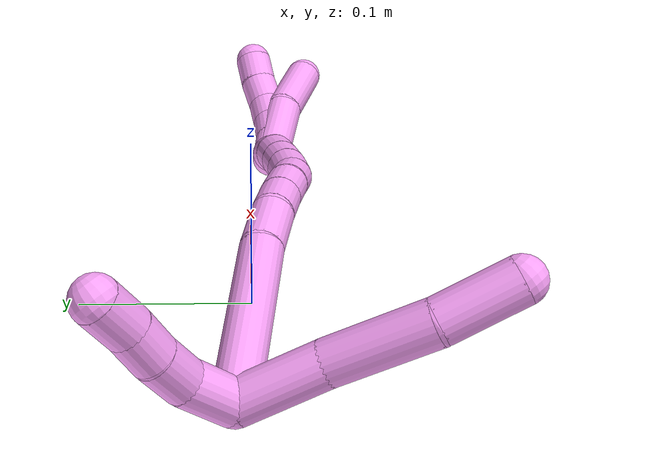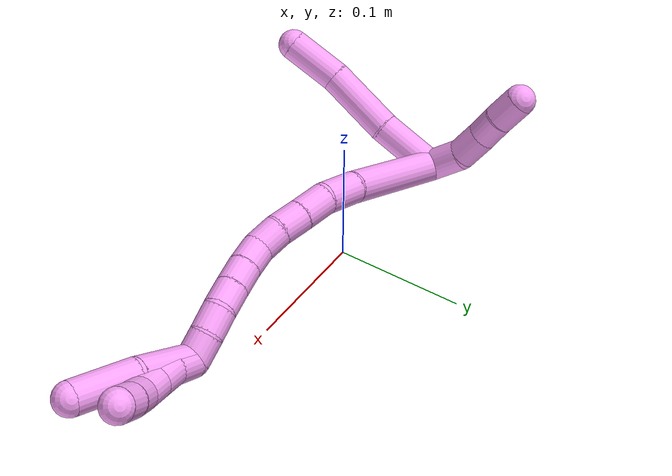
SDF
<sdf version="1.7">
 <world name="default">
  <model name="4">
   <static>0</static>
   <link name="4">
    <collision name="collision-cylinder-e_1_2_8">
     <pose>0.00024 -0.023753 -0.005178 1.78545 0.00986 0.012241</pose>
     <geometry><cylinder><radius>0.0125</radius><length>0.048624</length></cylinder></geometry>
     <surface>
      <friction><ode><mu>1.16</mu><mu2>1.16</mu2><slip1>0</slip1><slip2>0</slip2></ode></friction>
      <contact><ode><kp>1e+06</kp><kd>1</kd><max_vel>0</max_vel><min_depth>0.001</min_depth></ode></contact>
     </surface>
    </collision>
    <visual name="visual-cylinder-e_1_2_8">
     <pose>0.00024 -0.023753 -0.005178 1.78545 0.00986 0.012241</pose>
     <geometry><cylinder><radius>0.0125</radius><length>0.048624</length></cylinder></geometry>
     <material><ambient>1 0.65098 0.996078 1</ambient></material>
    </visual>
    <collision name="collision-cylinder-e_2_8_9">
     <pose>-0.003039 -0.075374 -0.017384 1.81782 -0.121808 -0.156214</pose>
     <geometry><cylinder><radius>0.0125</radius><length>0.057909</length></cylinder></geometry>
     <surface>
      <friction><ode><mu>1.16</mu><mu2>1.16</mu2><slip1>0</slip1><slip2>0</slip2></ode></friction>
      <contact><ode><kp>1e+06</kp><kd>1</kd><max_vel>0</max_vel><min_depth>0.001</min_depth></ode></contact>
     </surface>
    </collision>
    <visual name="visual-cylinder-e_2_8_9">
     <pose>-0.003039 -0.075374 -0.017384 1.81782 -0.121808 -0.156214</pose>
     <geometry><cylinder><radius>0.0125</radius><length>0.057909</length></cylinder></geometry>
     <material><ambient>1 0.65098 0.996078 1</ambient></material>
    </visual>
    <collision name="collision-cylinder-e_3_9_6">
     <pose>-0.005264 -0.124625 -0.028071 1.74028 0.05951 0.07055</pose>
     <geometry><cylinder><radius>0.0125</radius><length>0.043466</length></cylinder></geometry>
     <surface>
      <friction><ode><mu>1.16</mu><mu2>1.16</mu2><slip1>0</slip1><slip2>0</slip2></ode></friction>
      <contact><ode><kp>1e+06</kp><kd>1</kd><max_vel>0</max_vel><min_depth>0.001</min_depth></ode></contact>
     </surface>
    </collision>
    <visual name="visual-cylinder-e_3_9_6">
     <pose>-0.005264 -0.124625 -0.028071 1.74028 0.05951 0.07055</pose>
     <geometry><cylinder><radius>0.0125</radius><length>0.043466</length></cylinder></geometry>
     <material><ambient>1 0.65098 0.996078 1</ambient></material>
    </visual>
    <collision name="collision-cylinder-e_1_2_10">
     <pose>-0.008075 0.004359 0.012011 -0.348154 -0.563574 0.10173</pose>
     <geometry><cylinder><radius>0.0125</radius><length>0.03023</length></cylinder></geometry>
     <surface>
      <friction><ode><mu>1.16</mu><mu2>1.16</mu2><slip1>0</slip1><slip2>0</slip2></ode></friction>
      <contact><ode><kp>1e+06</kp><kd>1</kd><max_vel>0</max_vel><min_depth>0.001</min_depth></ode></contact>
     </surface>
    </collision>
    <visual name="visual-cylinder-e_1_2_10">
     <pose>-0.008075 0.004359 0.012011 -0.348154 -0.563574 0.10173</pose>
     <geometry><cylinder><radius>0.0125</radius><length>0.03023</length></cylinder></geometry>
     <material><ambient>1 0.65098 0.996078 1</ambient></material>
    </visual>
    <collision name="collision-cylinder-e_2_10_11">
     <pose>-0.024342 0.00843 0.033259 0.031254 -0.725311 -0.01186</pose>
     <geometry><cylinder><radius>0.0125</radius><length>0.024701</length></cylinder></geometry>
     <surface>
      <friction><ode><mu>1.16</mu><mu2>1.16</mu2><slip1>0</slip1><slip2>0</slip2></ode></friction>
      <contact><ode><kp>1e+06</kp><kd>1</kd><max_vel>0</max_vel><min_depth>0.001</min_depth></ode></contact>
     </surface>
    </collision>
    <visual name="visual-cylinder-e_2_10_11">
     <pose>-0.024342 0.00843 0.033259 0.031254 -0.725311 -0.01186</pose>
     <geometry><cylinder><radius>0.0125</radius><length>0.024701</length></cylinder></geometry>
     <material><ambient>1 0.65098 0.996078 1</ambient></material>
    </visual>
    <collision name="collision-cylinder-e_3_11_12">
     <pose>-0.03849 0.007172 0.051086 0.112294 -0.603218 -0.034968</pose>
     <geometry><cylinder><radius>0.0125</radius><length>0.020993</length></cylinder></geometry>
     <surface>
      <friction><ode><mu>1.16</mu><mu2>1.16</mu2><slip1>0</slip1><slip2>0</slip2></ode></friction>
      <contact><ode><kp>1e+06</kp><kd>1</kd><max_vel>0</max_vel><min_depth>0.001</min_depth></ode></contact>
     </surface>
    </collision>
    <visual name="visual-cylinder-e_3_11_12">
     <pose>-0.03849 0.007172 0.051086 0.112294 -0.603218 -0.034968</pose>
     <geometry><cylinder><radius>0.0125</radius><length>0.020993</length></cylinder></geometry>
     <material><ambient>1 0.65098 0.996078 1</ambient></material>
    </visual>
    <collision name="collision-cylinder-e_4_12_5">
     <pose>-0.052133 0.005867 0.068932 0.036351 -0.692837 -0.013123</pose>
     <geometry><cylinder><radius>0.0125</radius><length>0.024076</length></cylinder></geometry>
     <surface>
      <friction><ode><mu>1.16</mu><mu2>1.16</mu2><slip1>0</slip1><slip2>0</slip2></ode></friction>
      <contact><ode><kp>1e+06</kp><kd>1</kd><max_vel>0</max_vel><min_depth>0.001</min_depth></ode></contact>
     </surface>
    </collision>
    <visual name="visual-cylinder-e_4_12_5">
     <pose>-0.052133 0.005867 0.068932 0.036351 -0.692837 -0.013123</pose>
     <geometry><cylinder><radius>0.0125</radius><length>0.024076</length></cylinder></geometry>
     <material><ambient>1 0.65098 0.996078 1</ambient></material>
    </visual>
    <collision name="collision-cylinder-e_1_2_13">
     <pose>0.038071 -0.021357 0.025794 0.691575 0.849361 0.322982</pose>
     <geometry><cylinder><radius>0.0125</radius><length>0.101407</length></cylinder></geometry>
     <surface>
      <friction><ode><mu>1.16</mu><mu2>1.16</mu2><slip1>0</slip1><slip2>0</slip2></ode></friction>
      <contact><ode><kp>1e+06</kp><kd>1</kd><max_vel>0</max_vel><min_depth>0.001</min_depth></ode></contact>
     </surface>
    </collision>
    <visual name="visual-cylinder-e_1_2_13">
     <pose>0.038071 -0.021357 0.025794 0.691575 0.849361 0.322982</pose>
     <geometry><cylinder><radius>0.0125</radius><length>0.101407</length></cylinder></geometry>
     <material><ambient>1 0.65098 0.996078 1</ambient></material>
    </visual>
    <collision name="collision-cylinder-e_2_13_14">
     <pose>0.089033 -0.048807 0.057434 0.806058 0.990873 0.452908</pose>
     <geometry><cylinder><radius>0.0125</radius><length>0.030822</length></cylinder></geometry>
     <surface>
      <friction><ode><mu>1.16</mu><mu2>1.16</mu2><slip1>0</slip1><slip2>0</slip2></ode></friction>
      <contact><ode><kp>1e+06</kp><kd>1</kd><max_vel>0</max_vel><min_depth>0.001</min_depth></ode></contact>
     </surface>
    </collision>
    <visual name="visual-cylinder-e_2_13_14">
     <pose>0.089033 -0.048807 0.057434 0.806058 0.990873 0.452908</pose>
     <geometry><cylinder><radius>0.0125</radius><length>0.030822</length></cylinder></geometry>
     <material><ambient>1 0.65098 0.996078 1</ambient></material>
    </visual>
    <collision name="collision-cylinder-e_3_14_15">
     <pose>0.11386 -0.057723 0.066016 0.801122 1.25263 0.594572</pose>
     <geometry><cylinder><radius>0.0125</radius><length>0.025131</length></cylinder></geometry>
     <surface>
      <friction><ode><mu>1.16</mu><mu2>1.16</mu2><slip1>0</slip1><slip2>0</slip2></ode></friction>
      <contact><ode><kp>1e+06</kp><kd>1</kd><max_vel>0</max_vel><min_depth>0.001</min_depth></ode></contact>
     </surface>
    </collision>
    <visual name="visual-cylinder-e_3_14_15">
     <pose>0.11386 -0.057723 0.066016 0.801122 1.25263 0.594572</pose>
     <geometry><cylinder><radius>0.0125</radius><length>0.025131</length></cylinder></geometry>
     <material><ambient>1 0.65098 0.996078 1</ambient></material>
    </visual>
    <collision name="collision-cylinder-e_4_15_16">
     <pose>0.136251 -0.063208 0.070709 0.936622 1.26472 0.709898</pose>
     <geometry><cylinder><radius>0.0125</radius><length>0.021931</length></cylinder></geometry>
     <surface>
      <friction><ode><mu>1.16</mu><mu2>1.16</mu2><slip1>0</slip1><slip2>0</slip2></ode></friction>
      <contact><ode><kp>1e+06</kp><kd>1</kd><max_vel>0</max_vel><min_depth>0.001</min_depth></ode></contact>
     </surface>
    </collision>
    <visual name="visual-cylinder-e_4_15_16">
     <pose>0.136251 -0.063208 0.070709 0.936622 1.26472 0.709898</pose>
     <geometry><cylinder><radius>0.0125</radius><length>0.021931</length></cylinder></geometry>
     <material><ambient>1 0.65098 0.996078 1</ambient></material>
    </visual>
    <collision name="collision-cylinder-e_5_16_17">
     <pose>0.156869 -0.06702 0.073688 0.845116 1.42054 0.737964</pose>
     <geometry><cylinder><radius>0.0125</radius><length>0.020556</length></cylinder></geometry>
     <surface>
      <friction><ode><mu>1.16</mu><mu2>1.16</mu2><slip1>0</slip1><slip2>0</slip2></ode></friction>
      <contact><ode><kp>1e+06</kp><kd>1</kd><max_vel>0</max_vel><min_depth>0.001</min_depth></ode></contact>
     </surface>
    </collision>
    <visual name="visual-cylinder-e_5_16_17">
     <pose>0.156869 -0.06702 0.073688 0.845116 1.42054 0.737964</pose>
     <geometry><cylinder><radius>0.0125</radius><length>0.020556</length></cylinder></geometry>
     <material><ambient>1 0.65098 0.996078 1</ambient></material>
    </visual>
    <collision name="collision-cylinder-e_6_17_18">
     <pose>0.176369 -0.067653 0.078306 -0.143145 1.19967 -0.097985</pose>
     <geometry><cylinder><radius>0.0125</radius><length>0.02004</length></cylinder></geometry>
     <surface>
      <friction><ode><mu>1.16</mu><mu2>1.16</mu2><slip1>0</slip1><slip2>0</slip2></ode></friction>
      <contact><ode><kp>1e+06</kp><kd>1</kd><max_vel>0</max_vel><min_depth>0.001</min_depth></ode></contact>
     </surface>
    </collision>
    <visual name="visual-cylinder-e_6_17_18">
     <pose>0.176369 -0.067653 0.078306 -0.143145 1.19967 -0.097985</pose>
     <geometry><cylinder><radius>0.0125</radius><length>0.02004</length></cylinder></geometry>
     <material><ambient>1 0.65098 0.996078 1</ambient></material>
    </visual>
    <collision name="collision-cylinder-e_7_18_19">
     <pose>0.194987 -0.065972 0.08546 -0.31584 1.18748 -0.214156</pose>
     <geometry><cylinder><radius>0.0125</radius><length>0.020014</length></cylinder></geometry>
     <surface>
      <friction><ode><mu>1.16</mu><mu2>1.16</mu2><slip1>0</slip1><slip2>0</slip2></ode></friction>
      <contact><ode><kp>1e+06</kp><kd>1</kd><max_vel>0</max_vel><min_depth>0.001</min_depth></ode></contact>
     </surface>
    </collision>
    <visual name="visual-cylinder-e_7_18_19">
     <pose>0.194987 -0.065972 0.08546 -0.31584 1.18748 -0.214156</pose>
     <geometry><cylinder><radius>0.0125</radius><length>0.020014</length></cylinder></geometry>
     <material><ambient>1 0.65098 0.996078 1</ambient></material>
    </visual>
    <collision name="collision-cylinder-e_8_19_20">
     <pose>0.213615 -0.063384 0.092411 -0.397667 1.19562 -0.272707</pose>
     <geometry><cylinder><radius>0.0125</radius><length>0.020091</length></cylinder></geometry>
     <surface>
      <friction><ode><mu>1.16</mu><mu2>1.16</mu2><slip1>0</slip1><slip2>0</slip2></ode></friction>
      <contact><ode><kp>1e+06</kp><kd>1</kd><max_vel>0</max_vel><min_depth>0.001</min_depth></ode></contact>
     </surface>
    </collision>
    <visual name="visual-cylinder-e_8_19_20">
     <pose>0.213615 -0.063384 0.092411 -0.397667 1.19562 -0.272707</pose>
     <geometry><cylinder><radius>0.0125</radius><length>0.020091</length></cylinder></geometry>
     <material><ambient>1 0.65098 0.996078 1</ambient></material>
    </visual>
    <collision name="collision-cylinder-e_9_20_21">
     <pose>0.232636 -0.059669 0.096894 -1.12678 1.31447 -0.907129</pose>
     <geometry><cylinder><radius>0.0125</radius><length>0.020002</length></cylinder></geometry>
     <surface>
      <friction><ode><mu>1.16</mu><mu2>1.16</mu2><slip1>0</slip1><slip2>0</slip2></ode></friction>
      <contact><ode><kp>1e+06</kp><kd>1</kd><max_vel>0</max_vel><min_depth>0.001</min_depth></ode></contact>
     </surface>
    </collision>
    <visual name="visual-cylinder-e_9_20_21">
     <pose>0.232636 -0.059669 0.096894 -1.12678 1.31447 -0.907129</pose>
     <geometry><cylinder><radius>0.0125</radius><length>0.020002</length></cylinder></geometry>
     <material><ambient>1 0.65098 0.996078 1</ambient></material>
    </visual>
    <collision name="collision-cylinder-e_10_21_1">
     <pose>0.251988 -0.054954 0.097255 -1.8625 1.31487 -1.60795</pose>
     <geometry><cylinder><radius>0.0125</radius><length>0.020006</length></cylinder></geometry>
     <surface>
      <friction><ode><mu>1.16</mu><mu2>1.16</mu2><slip1>0</slip1><slip2>0</slip2></ode></friction>
      <contact><ode><kp>1e+06</kp><kd>1</kd><max_vel>0</max_vel><min_depth>0.001</min_depth></ode></contact>
     </surface>
    </collision>
    <visual name="visual-cylinder-e_10_21_1">
     <pose>0.251988 -0.054954 0.097255 -1.8625 1.31487 -1.60795</pose>
     <geometry><cylinder><radius>0.0125</radius><length>0.020006</length></cylinder></geometry>
     <material><ambient>1 0.65098 0.996078 1</ambient></material>
    </visual>
    <collision name="collision-cylinder-e_1_1_22">
     <pose>0.279614 -0.065092 0.108908 0.792692 0.794123 0.347438</pose>
     <geometry><cylinder><radius>0.0125</radius><length>0.05033</length></cylinder></geometry>
     <surface>
      <friction><ode><mu>1.16</mu><mu2>1.16</mu2><slip1>0</slip1><slip2>0</slip2></ode></friction>
      <contact><ode><kp>1e+06</kp><kd>1</kd><max_vel>0</max_vel><min_depth>0.001</min_depth></ode></contact>
     </surface>
    </collision>
    <visual name="visual-cylinder-e_1_1_22">
     <pose>0.279614 -0.065092 0.108908 0.792692 0.794123 0.347438</pose>
     <geometry><cylinder><radius>0.0125</radius><length>0.05033</length></cylinder></geometry>
     <material><ambient>1 0.65098 0.996078 1</ambient></material>
    </visual>
    <collision name="collision-cylinder-e_2_22_4">
     <pose>0.318365 -0.08929 0.128265 1.03068 0.992888 0.595388</pose>
     <geometry><cylinder><radius>0.0125</radius><length>0.04967</length></cylinder></geometry>
     <surface>
      <friction><ode><mu>1.16</mu><mu2>1.16</mu2><slip1>0</slip1><slip2>0</slip2></ode></friction>
      <contact><ode><kp>1e+06</kp><kd>1</kd><max_vel>0</max_vel><min_depth>0.001</min_depth></ode></contact>
     </surface>
    </collision>
    <visual name="visual-cylinder-e_2_22_4">
     <pose>0.318365 -0.08929 0.128265 1.03068 0.992888 0.595388</pose>
     <geometry><cylinder><radius>0.0125</radius><length>0.04967</length></cylinder></geometry>
     <material><ambient>1 0.65098 0.996078 1</ambient></material>
    </visual>
    <collision name="collision-cylinder-e_1_1_23">
     <pose>0.269138 -0.056705 0.101695 0.679729 0.84404 0.314889</pose>
     <geometry><cylinder><radius>0.0125</radius><length>0.02</length></cylinder></geometry>
     <surface>
      <friction><ode><mu>1.16</mu><mu2>1.16</mu2><slip1>0</slip1><slip2>0</slip2></ode></friction>
      <contact><ode><kp>1e+06</kp><kd>1</kd><max_vel>0</max_vel><min_depth>0.001</min_depth></ode></contact>
     </surface>
    </collision>
    <visual name="visual-cylinder-e_1_1_23">
     <pose>0.269138 -0.056705 0.101695 0.679729 0.84404 0.314889</pose>
     <geometry><cylinder><radius>0.0125</radius><length>0.02</length></cylinder></geometry>
     <material><ambient>1 0.65098 0.996078 1</ambient></material>
    </visual>
    <collision name="collision-cylinder-e_2_23_24">
     <pose>0.284506 -0.062758 0.112707 0.310676 0.9099 0.15291</pose>
     <geometry><cylinder><radius>0.0125</radius><length>0.02</length></cylinder></geometry>
     <surface>
      <friction><ode><mu>1.16</mu><mu2>1.16</mu2><slip1>0</slip1><slip2>0</slip2></ode></friction>
      <contact><ode><kp>1e+06</kp><kd>1</kd><max_vel>0</max_vel><min_depth>0.001</min_depth></ode></contact>
     </surface>
    </collision>
    <visual name="visual-cylinder-e_2_23_24">
     <pose>0.284506 -0.062758 0.112707 0.310676 0.9099 0.15291</pose>
     <geometry><cylinder><radius>0.0125</radius><length>0.02</length></cylinder></geometry>
     <material><ambient>1 0.65098 0.996078 1</ambient></material>
    </visual>
    <collision name="collision-cylinder-e_3_24_25">
     <pose>0.299453 -0.066469 0.125399 0.261707 0.782765 0.108513</pose>
     <geometry><cylinder><radius>0.0125</radius><length>0.02</length></cylinder></geometry>
     <surface>
      <friction><ode><mu>1.16</mu><mu2>1.16</mu2><slip1>0</slip1><slip2>0</slip2></ode></friction>
      <contact><ode><kp>1e+06</kp><kd>1</kd><max_vel>0</max_vel><min_depth>0.001</min_depth></ode></contact>
     </surface>
    </collision>
    <visual name="visual-cylinder-e_3_24_25">
     <pose>0.299453 -0.066469 0.125399 0.261707 0.782765 0.108513</pose>
     <geometry><cylinder><radius>0.0125</radius><length>0.02</length></cylinder></geometry>
     <material><ambient>1 0.65098 0.996078 1</ambient></material>
    </visual>
    <collision name="collision-cylinder-e_4_25_26">
     <pose>0.311009 -0.070457 0.140912 0.243546 0.467266 0.058231</pose>
     <geometry><cylinder><radius>0.0125</radius><length>0.02</length></cylinder></geometry>
     <surface>
      <friction><ode><mu>1.16</mu><mu2>1.16</mu2><slip1>0</slip1><slip2>0</slip2></ode></friction>
      <contact><ode><kp>1e+06</kp><kd>1</kd><max_vel>0</max_vel><min_depth>0.001</min_depth></ode></contact>
     </surface>
    </collision>
    <visual name="visual-cylinder-e_4_25_26">
     <pose>0.311009 -0.070457 0.140912 0.243546 0.467266 0.058231</pose>
     <geometry><cylinder><radius>0.0125</radius><length>0.02</length></cylinder></geometry>
     <material><ambient>1 0.65098 0.996078 1</ambient></material>
    </visual>
    <collision name="collision-cylinder-e_5_26_3">
     <pose>0.320187 -0.075657 0.157876 0.351894 0.486262 0.088138</pose>
     <geometry><cylinder><radius>0.0125</radius><length>0.02</length></cylinder></geometry>
     <surface>
      <friction><ode><mu>1.16</mu><mu2>1.16</mu2><slip1>0</slip1><slip2>0</slip2></ode></friction>
      <contact><ode><kp>1e+06</kp><kd>1</kd><max_vel>0</max_vel><min_depth>0.001</min_depth></ode></contact>
     </surface>
    </collision>
    <visual name="visual-cylinder-e_5_26_3">
     <pose>0.320187 -0.075657 0.157876 0.351894 0.486262 0.088138</pose>
     <geometry><cylinder><radius>0.0125</radius><length>0.02</length></cylinder></geometry>
     <material><ambient>1 0.65098 0.996078 1</ambient></material>
    </visual>
    <collision name="collision-sphere-3">
     <pose>0.32486 -0.078704 0.166175 0 -0 0</pose>
     <geometry><sphere><radius>0.0125</radius></sphere></geometry>
     <surface>
      <friction><ode><mu>1.16</mu><mu2>1.16</mu2><slip1>0</slip1><slip2>0</slip2></ode></friction>
      <contact><ode><kp>1e+06</kp><kd>1</kd><max_vel>0</max_vel><min_depth>0.001</min_depth></ode></contact>
     </surface>
    </collision>
    <visual name="visual-sphere-3">
     <pose>0.32486 -0.078704 0.166175 0 -0 0</pose>
     <geometry><sphere><radius>0.0125</radius></sphere></geometry>
     <material><ambient>1 0.65098 0.996078 1</ambient></material>
    </visual>
    <collision name="collision-sphere-26">
     <pose>0.315514 -0.072609 0.149577 0 -0 0</pose>
     <geometry><sphere><radius>0.0125</radius></sphere></geometry>
     <surface>
      <friction><ode><mu>1.16</mu><mu2>1.16</mu2><slip1>0</slip1><slip2>0</slip2></ode></friction>
      <contact><ode><kp>1e+06</kp><kd>1</kd><max_vel>0</max_vel><min_depth>0.001</min_depth></ode></contact>
     </surface>
    </collision>
    <visual name="visual-sphere-26">
     <pose>0.315514 -0.072609 0.149577 0 -0 0</pose>
     <geometry><sphere><radius>0.0125</radius></sphere></geometry>
     <material><ambient>1 0.65098 0.996078 1</ambient></material>
    </visual>
    <collision name="collision-sphere-25">
     <pose>0.306505 -0.068304 0.132248 0 -0 0</pose>
     <geometry><sphere><radius>0.0125</radius></sphere></geometry>
     <surface>
      <friction><ode><mu>1.16</mu><mu2>1.16</mu2><slip1>0</slip1><slip2>0</slip2></ode></friction>
      <contact><ode><kp>1e+06</kp><kd>1</kd><max_vel>0</max_vel><min_depth>0.001</min_depth></ode></contact>
     </surface>
    </collision>
    <visual name="visual-sphere-25">
     <pose>0.306505 -0.068304 0.132248 0 -0 0</pose>
     <geometry><sphere><radius>0.0125</radius></sphere></geometry>
     <material><ambient>1 0.65098 0.996078 1</ambient></material>
    </visual>
    <collision name="collision-sphere-24">
     <pose>0.2924 -0.064635 0.118551 0 -0 0</pose>
     <geometry><sphere><radius>0.0125</radius></sphere></geometry>
     <surface>
      <friction><ode><mu>1.16</mu><mu2>1.16</mu2><slip1>0</slip1><slip2>0</slip2></ode></friction>
      <contact><ode><kp>1e+06</kp><kd>1</kd><max_vel>0</max_vel><min_depth>0.001</min_depth></ode></contact>
     </surface>
    </collision>
    <visual name="visual-sphere-24">
     <pose>0.2924 -0.064635 0.118551 0 -0 0</pose>
     <geometry><sphere><radius>0.0125</radius></sphere></geometry>
     <material><ambient>1 0.65098 0.996078 1</ambient></material>
    </visual>
    <collision name="collision-sphere-23">
     <pose>0.276611 -0.060882 0.106862 0 -0 0</pose>
     <geometry><sphere><radius>0.0125</radius></sphere></geometry>
     <surface>
      <friction><ode><mu>1.16</mu><mu2>1.16</mu2><slip1>0</slip1><slip2>0</slip2></ode></friction>
      <contact><ode><kp>1e+06</kp><kd>1</kd><max_vel>0</max_vel><min_depth>0.001</min_depth></ode></contact>
     </surface>
    </collision>
    <visual name="visual-sphere-23">
     <pose>0.276611 -0.060882 0.106862 0 -0 0</pose>
     <geometry><sphere><radius>0.0125</radius></sphere></geometry>
     <material><ambient>1 0.65098 0.996078 1</ambient></material>
    </visual>
    <collision name="collision-sphere-4">
     <pose>0.339166 -0.100926 0.135242 0 -0 0</pose>
     <geometry><sphere><radius>0.0125</radius></sphere></geometry>
     <surface>
      <friction><ode><mu>1.16</mu><mu2>1.16</mu2><slip1>0</slip1><slip2>0</slip2></ode></friction>
      <contact><ode><kp>1e+06</kp><kd>1</kd><max_vel>0</max_vel><min_depth>0.001</min_depth></ode></contact>
     </surface>
    </collision>
    <visual name="visual-sphere-4">
     <pose>0.339166 -0.100926 0.135242 0 -0 0</pose>
     <geometry><sphere><radius>0.0125</radius></sphere></geometry>
     <material><ambient>1 0.65098 0.996078 1</ambient></material>
    </visual>
    <collision name="collision-sphere-22">
     <pose>0.297563 -0.077655 0.121289 0 -0 0</pose>
     <geometry><sphere><radius>0.0125</radius></sphere></geometry>
     <surface>
      <friction><ode><mu>1.16</mu><mu2>1.16</mu2><slip1>0</slip1><slip2>0</slip2></ode></friction>
      <contact><ode><kp>1e+06</kp><kd>1</kd><max_vel>0</max_vel><min_depth>0.001</min_depth></ode></contact>
     </surface>
    </collision>
    <visual name="visual-sphere-22">
     <pose>0.297563 -0.077655 0.121289 0 -0 0</pose>
     <geometry><sphere><radius>0.0125</radius></sphere></geometry>
     <material><ambient>1 0.65098 0.996078 1</ambient></material>
    </visual>
    <collision name="collision-sphere-1">
     <pose>0.261665 -0.052529 0.096527 0 -0 0</pose>
     <geometry><sphere><radius>0.0125</radius></sphere></geometry>
     <surface>
      <friction><ode><mu>1.16</mu><mu2>1.16</mu2><slip1>0</slip1><slip2>0</slip2></ode></friction>
      <contact><ode><kp>1e+06</kp><kd>1</kd><max_vel>0</max_vel><min_depth>0.001</min_depth></ode></contact>
     </surface>
    </collision>
    <visual name="visual-sphere-1">
     <pose>0.261665 -0.052529 0.096527 0 -0 0</pose>
     <geometry><sphere><radius>0.0125</radius></sphere></geometry>
     <material><ambient>1 0.65098 0.996078 1</ambient></material>
    </visual>
    <collision name="collision-sphere-21">
     <pose>0.24231 -0.057379 0.097983 0 -0 0</pose>
     <geometry><sphere><radius>0.0125</radius></sphere></geometry>
     <surface>
      <friction><ode><mu>1.16</mu><mu2>1.16</mu2><slip1>0</slip1><slip2>0</slip2></ode></friction>
      <contact><ode><kp>1e+06</kp><kd>1</kd><max_vel>0</max_vel><min_depth>0.001</min_depth></ode></contact>
     </surface>
    </collision>
    <visual name="visual-sphere-21">
     <pose>0.24231 -0.057379 0.097983 0 -0 0</pose>
     <geometry><sphere><radius>0.0125</radius></sphere></geometry>
     <material><ambient>1 0.65098 0.996078 1</ambient></material>
    </visual>
    <collision name="collision-sphere-11">
     <pose>-0.032535 0.008141 0.042497 0 -0 0</pose>
     <geometry><sphere><radius>0.0125</radius></sphere></geometry>
     <surface>
      <friction><ode><mu>1.16</mu><mu2>1.16</mu2><slip1>0</slip1><slip2>0</slip2></ode></friction>
      <contact><ode><kp>1e+06</kp><kd>1</kd><max_vel>0</max_vel><min_depth>0.001</min_depth></ode></contact>
     </surface>
    </collision>
    <visual name="visual-sphere-11">
     <pose>-0.032535 0.008141 0.042497 0 -0 0</pose>
     <geometry><sphere><radius>0.0125</radius></sphere></geometry>
     <material><ambient>1 0.65098 0.996078 1</ambient></material>
    </visual>
    <collision name="collision-sphere-10">
     <pose>-0.016149 0.008718 0.024022 0 -0 0</pose>
     <geometry><sphere><radius>0.0125</radius></sphere></geometry>
     <surface>
      <friction><ode><mu>1.16</mu><mu2>1.16</mu2><slip1>0</slip1><slip2>0</slip2></ode></friction>
      <contact><ode><kp>1e+06</kp><kd>1</kd><max_vel>0</max_vel><min_depth>0.001</min_depth></ode></contact>
     </surface>
    </collision>
    <visual name="visual-sphere-10">
     <pose>-0.016149 0.008718 0.024022 0 -0 0</pose>
     <geometry><sphere><radius>0.0125</radius></sphere></geometry>
     <material><ambient>1 0.65098 0.996078 1</ambient></material>
    </visual>
    <collision name="collision-sphere-6">
     <pose>-0.003972 -0.146009 -0.03173 0 -0 0</pose>
     <geometry><sphere><radius>0.0125</radius></sphere></geometry>
     <surface>
      <friction><ode><mu>1.16</mu><mu2>1.16</mu2><slip1>0</slip1><slip2>0</slip2></ode></friction>
      <contact><ode><kp>1e+06</kp><kd>1</kd><max_vel>0</max_vel><min_depth>0.001</min_depth></ode></contact>
     </surface>
    </collision>
    <visual name="visual-sphere-6">
     <pose>-0.003972 -0.146009 -0.03173 0 -0 0</pose>
     <geometry><sphere><radius>0.0125</radius></sphere></geometry>
     <material><ambient>1 0.65098 0.996078 1</ambient></material>
    </visual>
    <collision name="collision-sphere-9">
     <pose>-0.006557 -0.103242 -0.024412 0 -0 0</pose>
     <geometry><sphere><radius>0.0125</radius></sphere></geometry>
     <surface>
      <friction><ode><mu>1.16</mu><mu2>1.16</mu2><slip1>0</slip1><slip2>0</slip2></ode></friction>
      <contact><ode><kp>1e+06</kp><kd>1</kd><max_vel>0</max_vel><min_depth>0.001</min_depth></ode></contact>
     </surface>
    </collision>
    <visual name="visual-sphere-9">
     <pose>-0.006557 -0.103242 -0.024412 0 -0 0</pose>
     <geometry><sphere><radius>0.0125</radius></sphere></geometry>
     <material><ambient>1 0.65098 0.996078 1</ambient></material>
    </visual>
    <collision name="collision-sphere-2">
     <geometry><sphere><radius>0.0125</radius></sphere></geometry>
     <surface>
      <friction><ode><mu>1.16</mu><mu2>1.16</mu2><slip1>0</slip1><slip2>0</slip2></ode></friction>
      <contact><ode><kp>1e+06</kp><kd>1</kd><max_vel>0</max_vel><min_depth>0.001</min_depth></ode></contact>
     </surface>
    </collision>
    <visual name="visual-sphere-2">
     <geometry><sphere><radius>0.0125</radius></sphere></geometry>
     <material><ambient>1 0.65098 0.996078 1</ambient></material>
    </visual>
    <collision name="collision-sphere-19">
     <pose>0.204268 -0.06481 0.089017 0 -0 0</pose>
     <geometry><sphere><radius>0.0125</radius></sphere></geometry>
     <surface>
      <friction><ode><mu>1.16</mu><mu2>1.16</mu2><slip1>0</slip1><slip2>0</slip2></ode></friction>
      <contact><ode><kp>1e+06</kp><kd>1</kd><max_vel>0</max_vel><min_depth>0.001</min_depth></ode></contact>
     </surface>
    </collision>
    <visual name="visual-sphere-19">
     <pose>0.204268 -0.06481 0.089017 0 -0 0</pose>
     <geometry><sphere><radius>0.0125</radius></sphere></geometry>
     <material><ambient>1 0.65098 0.996078 1</ambient></material>
    </visual>
    <collision name="collision-sphere-8">
     <pose>0.000479 -0.047506 -0.010357 0 -0 0</pose>
     <geometry><sphere><radius>0.0125</radius></sphere></geometry>
     <surface>
      <friction><ode><mu>1.16</mu><mu2>1.16</mu2><slip1>0</slip1><slip2>0</slip2></ode></friction>
      <contact><ode><kp>1e+06</kp><kd>1</kd><max_vel>0</max_vel><min_depth>0.001</min_depth></ode></contact>
     </surface>
    </collision>
    <visual name="visual-sphere-8">
     <pose>0.000479 -0.047506 -0.010357 0 -0 0</pose>
     <geometry><sphere><radius>0.0125</radius></sphere></geometry>
     <material><ambient>1 0.65098 0.996078 1</ambient></material>
    </visual>
    <collision name="collision-sphere-12">
     <pose>-0.044444 0.006204 0.059676 0 -0 0</pose>
     <geometry><sphere><radius>0.0125</radius></sphere></geometry>
     <surface>
      <friction><ode><mu>1.16</mu><mu2>1.16</mu2><slip1>0</slip1><slip2>0</slip2></ode></friction>
      <contact><ode><kp>1e+06</kp><kd>1</kd><max_vel>0</max_vel><min_depth>0.001</min_depth></ode></contact>
     </surface>
    </collision>
    <visual name="visual-sphere-12">
     <pose>-0.044444 0.006204 0.059676 0 -0 0</pose>
     <geometry><sphere><radius>0.0125</radius></sphere></geometry>
     <material><ambient>1 0.65098 0.996078 1</ambient></material>
    </visual>
    <collision name="collision-sphere-5">
     <pose>-0.059822 0.00553 0.078188 0 -0 0</pose>
     <geometry><sphere><radius>0.0125</radius></sphere></geometry>
     <surface>
      <friction><ode><mu>1.16</mu><mu2>1.16</mu2><slip1>0</slip1><slip2>0</slip2></ode></friction>
      <contact><ode><kp>1e+06</kp><kd>1</kd><max_vel>0</max_vel><min_depth>0.001</min_depth></ode></contact>
     </surface>
    </collision>
    <visual name="visual-sphere-5">
     <pose>-0.059822 0.00553 0.078188 0 -0 0</pose>
     <geometry><sphere><radius>0.0125</radius></sphere></geometry>
     <material><ambient>1 0.65098 0.996078 1</ambient></material>
    </visual>
    <collision name="collision-sphere-13">
     <pose>0.076142 -0.042714 0.051587 0 -0 0</pose>
     <geometry><sphere><radius>0.0125</radius></sphere></geometry>
     <surface>
      <friction><ode><mu>1.16</mu><mu2>1.16</mu2><slip1>0</slip1><slip2>0</slip2></ode></friction>
      <contact><ode><kp>1e+06</kp><kd>1</kd><max_vel>0</max_vel><min_depth>0.001</min_depth></ode></contact>
     </surface>
    </collision>
    <visual name="visual-sphere-13">
     <pose>0.076142 -0.042714 0.051587 0 -0 0</pose>
     <geometry><sphere><radius>0.0125</radius></sphere></geometry>
     <material><ambient>1 0.65098 0.996078 1</ambient></material>
    </visual>
    <collision name="collision-sphere-14">
     <pose>0.101925 -0.0549 0.063281 0 -0 0</pose>
     <geometry><sphere><radius>0.0125</radius></sphere></geometry>
     <surface>
      <friction><ode><mu>1.16</mu><mu2>1.16</mu2><slip1>0</slip1><slip2>0</slip2></ode></friction>
      <contact><ode><kp>1e+06</kp><kd>1</kd><max_vel>0</max_vel><min_depth>0.001</min_depth></ode></contact>
     </surface>
    </collision>
    <visual name="visual-sphere-14">
     <pose>0.101925 -0.0549 0.063281 0 -0 0</pose>
     <geometry><sphere><radius>0.0125</radius></sphere></geometry>
     <material><ambient>1 0.65098 0.996078 1</ambient></material>
    </visual>
    <collision name="collision-sphere-15">
     <pose>0.125795 -0.060546 0.068751 0 -0 0</pose>
     <geometry><sphere><radius>0.0125</radius></sphere></geometry>
     <surface>
      <friction><ode><mu>1.16</mu><mu2>1.16</mu2><slip1>0</slip1><slip2>0</slip2></ode></friction>
      <contact><ode><kp>1e+06</kp><kd>1</kd><max_vel>0</max_vel><min_depth>0.001</min_depth></ode></contact>
     </surface>
    </collision>
    <visual name="visual-sphere-15">
     <pose>0.125795 -0.060546 0.068751 0 -0 0</pose>
     <geometry><sphere><radius>0.0125</radius></sphere></geometry>
     <material><ambient>1 0.65098 0.996078 1</ambient></material>
    </visual>
    <collision name="collision-sphere-16">
     <pose>0.146707 -0.06587 0.072667 0 -0 0</pose>
     <geometry><sphere><radius>0.0125</radius></sphere></geometry>
     <surface>
      <friction><ode><mu>1.16</mu><mu2>1.16</mu2><slip1>0</slip1><slip2>0</slip2></ode></friction>
      <contact><ode><kp>1e+06</kp><kd>1</kd><max_vel>0</max_vel><min_depth>0.001</min_depth></ode></contact>
     </surface>
    </collision>
    <visual name="visual-sphere-16">
     <pose>0.146707 -0.06587 0.072667 0 -0 0</pose>
     <geometry><sphere><radius>0.0125</radius></sphere></geometry>
     <material><ambient>1 0.65098 0.996078 1</ambient></material>
    </visual>
    <collision name="collision-sphere-17">
     <pose>0.167031 -0.068171 0.074709 0 -0 0</pose>
     <geometry><sphere><radius>0.0125</radius></sphere></geometry>
     <surface>
      <friction><ode><mu>1.16</mu><mu2>1.16</mu2><slip1>0</slip1><slip2>0</slip2></ode></friction>
      <contact><ode><kp>1e+06</kp><kd>1</kd><max_vel>0</max_vel><min_depth>0.001</min_depth></ode></contact>
     </surface>
    </collision>
    <visual name="visual-sphere-17">
     <pose>0.167031 -0.068171 0.074709 0 -0 0</pose>
     <geometry><sphere><radius>0.0125</radius></sphere></geometry>
     <material><ambient>1 0.65098 0.996078 1</ambient></material>
    </visual>
    <collision name="collision-sphere-18">
     <pose>0.185707 -0.067134 0.081903 0 -0 0</pose>
     <geometry><sphere><radius>0.0125</radius></sphere></geometry>
     <surface>
      <friction><ode><mu>1.16</mu><mu2>1.16</mu2><slip1>0</slip1><slip2>0</slip2></ode></friction>
      <contact><ode><kp>1e+06</kp><kd>1</kd><max_vel>0</max_vel><min_depth>0.001</min_depth></ode></contact>
     </surface>
    </collision>
    <visual name="visual-sphere-18">
     <pose>0.185707 -0.067134 0.081903 0 -0 0</pose>
     <geometry><sphere><radius>0.0125</radius></sphere></geometry>
     <material><ambient>1 0.65098 0.996078 1</ambient></material>
    </visual>
    <collision name="collision-sphere-20">
     <pose>0.222962 -0.061958 0.095805 0 -0 0</pose>
     <geometry><sphere><radius>0.0125</radius></sphere></geometry>
     <surface>
      <friction><ode><mu>1.16</mu><mu2>1.16</mu2><slip1>0</slip1><slip2>0</slip2></ode></friction>
      <contact><ode><kp>1e+06</kp><kd>1</kd><max_vel>0</max_vel><min_depth>0.001</min_depth></ode></contact>
     </surface>
    </collision>
    <visual name="visual-sphere-20">
     <pose>0.222962 -0.061958 0.095805 0 -0 0</pose>
     <geometry><sphere><radius>0.0125</radius></sphere></geometry>
     <material><ambient>1 0.65098 0.996078 1</ambient></material>
    </visual>
    <inertial>
     <pose>0.124496 -0.051712 0.058923 0 -0 0</pose>
     <mass>0.75</mass>
     <inertia><ixx>0.000178</ixx><ixy>0</ixy><ixz>0</ixz><iyy>0.000129</iyy><iyz>0</iyz><izz>1e-05</izz></inertia>
    </inertial>
   </link>
   <pose>-0.11548 0.009019 0.012327 -0.702378 0.366189 -0.161021</pose>
  </model>
 </world>
</sdf>
